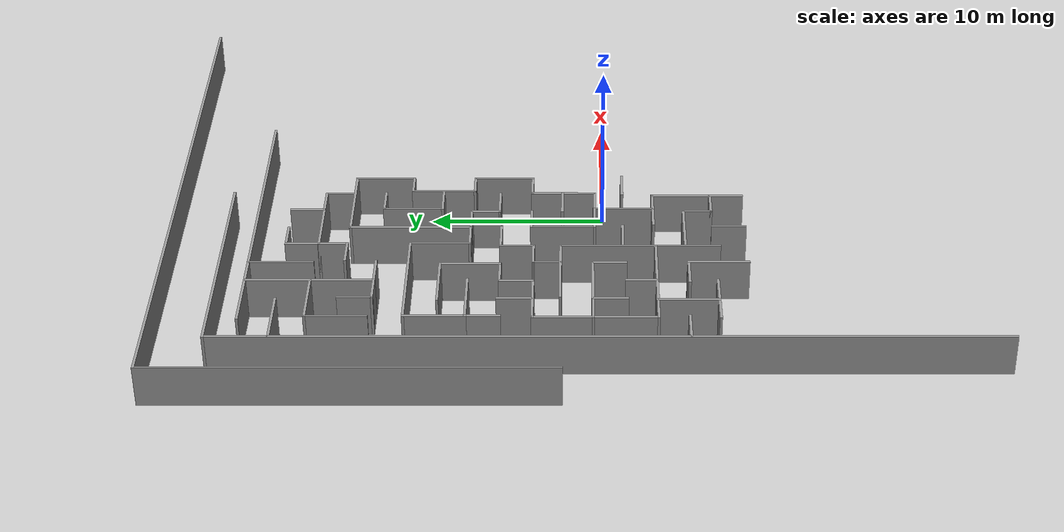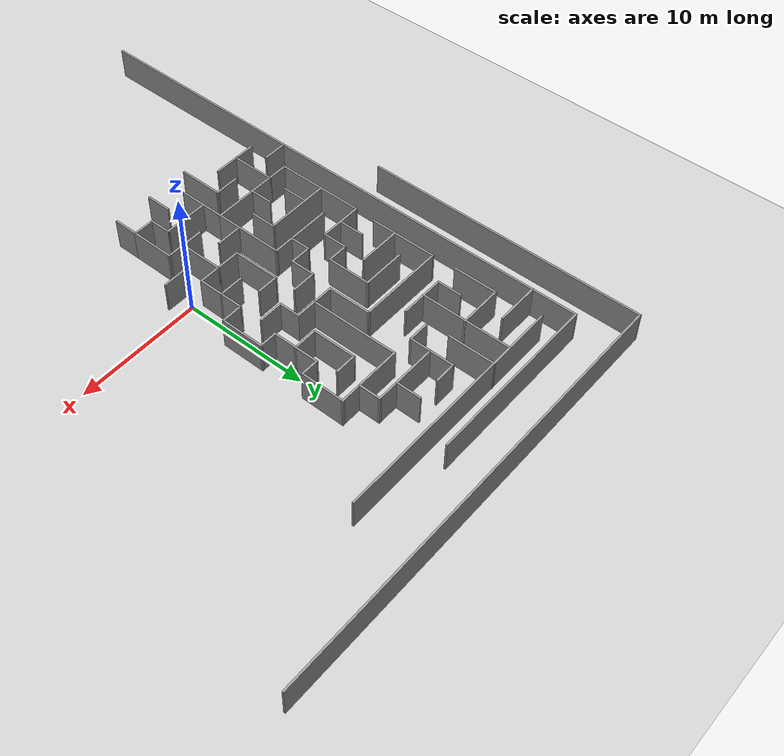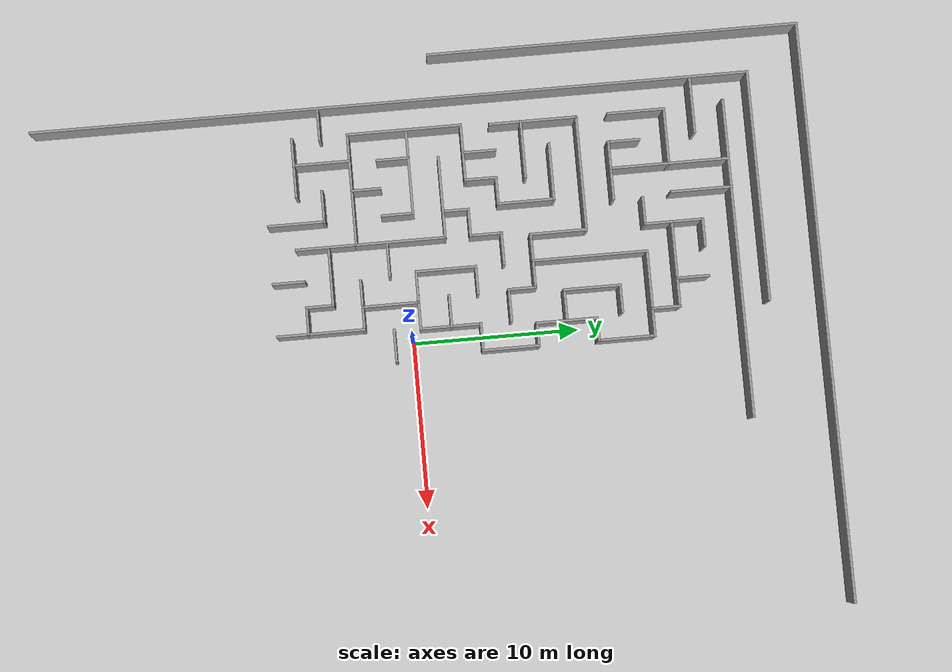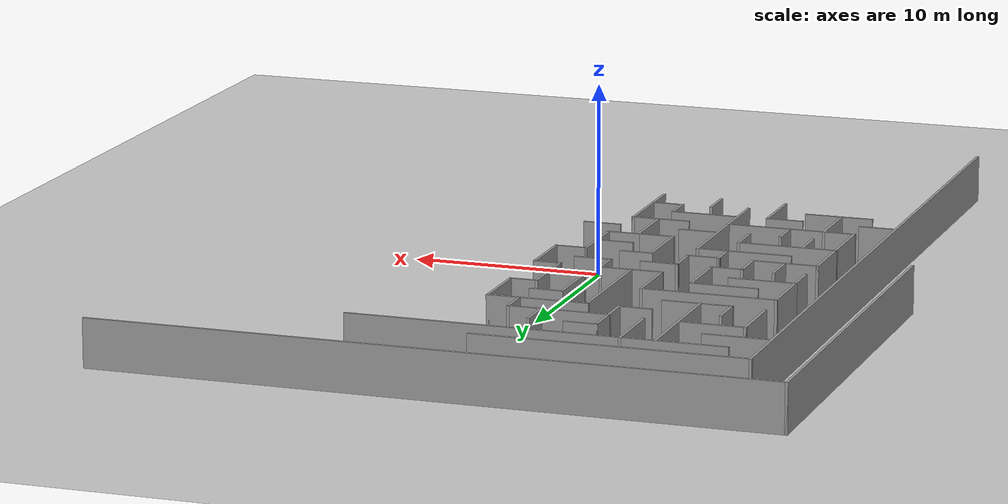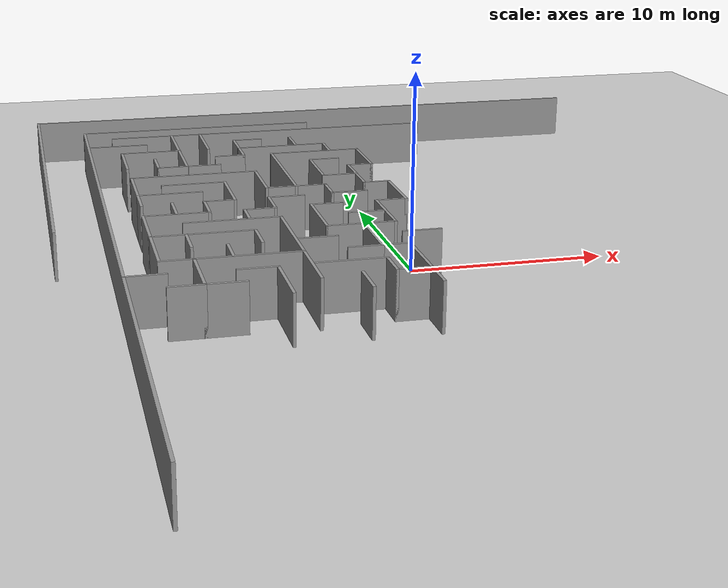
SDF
<sdf version="1.6">
 <world name="default">
  <model name="ground_plane">
   <static>1</static>
   <link name="link">
    <collision name="collision">
     <geometry><plane><normal>0 0 1</normal><size>100 100</size></plane></geometry>
     <surface><friction><ode><mu>100</mu><mu2>50</mu2></ode></friction></surface>
    </collision>
    <visual name="visual">
     <cast_shadows>0</cast_shadows>
     <geometry><plane><normal>0 0 1</normal><size>100 100</size></plane></geometry>
     <material>
      <script><uri>file://media/materials/scripts/gazebo.material</uri><name>Gazebo/Grey</name></script>
     </material>
    </visual>
   </link>
  </model>
  <model name="navigation-maze">
   <pose>0.2351 -0.2528 0 0 -0 0</pose>
   <link name="Wall_103">
    <collision name="Wall_103_Collision">
     <geometry><box><size>2 0.15 2.5</size></box></geometry>
     <pose>0 0 1.25 0 -0 0</pose>
    </collision>
    <visual name="Wall_103_Visual">
     <pose>0 0 1.25 0 -0 0</pose>
     <geometry><box><size>2 0.15 2.5</size></box></geometry>
     <material>
      <script><uri>file://media/materials/scripts/gazebo.material</uri><name>Gazebo/Grey</name></script>
      <ambient>1 1 1 1</ambient>
     </material>
    </visual>
    <pose>-10.462 -6.02334 0 0 -0 0</pose>
   </link>
   <link name="Wall_105">
    <collision name="Wall_105_Collision">
     <geometry><box><size>5.25 0.15 2.5</size></box></geometry>
     <pose>0 0 1.25 0 -0 0</pose>
    </collision>
    <visual name="Wall_105_Visual">
     <pose>0 0 1.25 0 -0 0</pose>
     <geometry><box><size>5.25 0.15 2.5</size></box></geometry>
     <material>
      <script><uri>file://media/materials/scripts/gazebo.material</uri><name>Gazebo/Grey</name></script>
      <ambient>1 1 1 1</ambient>
     </material>
    </visual>
    <pose>-8.83704 -2.67334 0 0 -0 0</pose>
   </link>
   <link name="Wall_106">
    <collision name="Wall_106_Collision">
     <geometry><box><size>5.5 0.15 2.5</size></box></geometry>
     <pose>0 0 1.25 0 -0 0</pose>
    </collision>
    <visual name="Wall_106_Visual">
     <pose>0 0 1.25 0 -0 0</pose>
     <geometry><box><size>5.5 0.15 2.5</size></box></geometry>
     <material>
      <script><uri>file://media/materials/scripts/gazebo.material</uri><name>Gazebo/Grey</name></script>
      <ambient>1 1 1 1</ambient>
     </material>
    </visual>
    <pose>-6.28704 0.001663 0 0 -0 1.5708</pose>
   </link>
   <link name="Wall_107">
    <collision name="Wall_107_Collision">
     <geometry><box><size>5 0.15 2.5</size></box></geometry>
     <pose>0 0 1.25 0 -0 0</pose>
    </collision>
    <visual name="Wall_107_Visual">
     <pose>0 0 1.25 0 -0 0</pose>
     <geometry><box><size>5 0.15 2.5</size></box></geometry>
     <material>
      <script><uri>file://media/materials/scripts/gazebo.material</uri><name>Gazebo/Grey</name></script>
      <ambient>1 1 1 1</ambient>
     </material>
    </visual>
    <pose>-8.71204 2.67666 0 0 -0 3.14159</pose>
   </link>
   <link name="Wall_109">
    <collision name="Wall_109_Collision">
     <geometry><box><size>2 0.15 2.5</size></box></geometry>
     <pose>0 0 1.25 0 -0 0</pose>
    </collision>
    <visual name="Wall_109_Visual">
     <pose>0 0 1.25 0 -0 0</pose>
     <geometry><box><size>2 0.15 2.5</size></box></geometry>
     <material>
      <script><uri>file://media/materials/scripts/gazebo.material</uri><name>Gazebo/Grey</name></script>
      <ambient>1 1 1 1</ambient>
     </material>
    </visual>
    <pose>-5.2054 -0.836643 0 0 -0 0</pose>
   </link>
   <link name="Wall_111">
    <collision name="Wall_111_Collision">
     <geometry><box><size>1.67297 0.15 2.5</size></box></geometry>
     <pose>0 0 1.25 0 -0 0</pose>
    </collision>
    <visual name="Wall_111_Visual">
     <pose>0 0 1.25 0 -0 0</pose>
     <geometry><box><size>1.67297 0.15 2.5</size></box></geometry>
     <material>
      <script><uri>file://media/materials/scripts/gazebo.material</uri><name>Gazebo/Grey</name></script>
      <ambient>1 1 1 1</ambient>
     </material>
    </visual>
    <pose>-7.86144 3.43937 0 0 -0 1.57161</pose>
   </link>
   <link name="Wall_112">
    <collision name="Wall_112_Collision">
     <geometry><box><size>1.75 0.15 2.5</size></box></geometry>
     <pose>0 0 1.25 0 -0 0</pose>
    </collision>
    <visual name="Wall_112_Visual">
     <pose>0 0 1.25 0 -0 0</pose>
     <geometry><box><size>1.75 0.15 2.5</size></box></geometry>
     <material>
      <script><uri>file://media/materials/scripts/gazebo.material</uri><name>Gazebo/Grey</name></script>
      <ambient>1 1 1 1</ambient>
     </material>
    </visual>
    <pose>-7.06206 4.20085 0 0 -0 0</pose>
   </link>
   <link name="Wall_113">
    <collision name="Wall_113_Collision">
     <geometry><box><size>2 0.15 2.5</size></box></geometry>
     <pose>0 0 1.25 0 -0 0</pose>
    </collision>
    <visual name="Wall_113_Visual">
     <pose>0 0 1.25 0 -0 0</pose>
     <geometry><box><size>2 0.15 2.5</size></box></geometry>
     <material>
      <script><uri>file://media/materials/scripts/gazebo.material</uri><name>Gazebo/Grey</name></script>
      <ambient>1 1 1 1</ambient>
     </material>
    </visual>
    <pose>-6.26206 5.12584 0 0 -0 1.5708</pose>
   </link>
   <link name="Wall_114">
    <collision name="Wall_114_Collision">
     <geometry><box><size>2 0.15 2.5</size></box></geometry>
     <pose>0 0 1.25 0 -0 0</pose>
    </collision>
    <visual name="Wall_114_Visual">
     <pose>0 0 1.25 0 -0 0</pose>
     <geometry><box><size>2 0.15 2.5</size></box></geometry>
     <material>
      <script><uri>file://media/materials/scripts/gazebo.material</uri><name>Gazebo/Grey</name></script>
      <ambient>1 1 1 1</ambient>
     </material>
    </visual>
    <pose>-5.33706 6.05084 0 0 -0 0</pose>
   </link>
   <link name="Wall_116">
    <collision name="Wall_116_Collision">
     <geometry><box><size>5.25 0.15 2.5</size></box></geometry>
     <pose>0 0 1.25 0 -0 0</pose>
    </collision>
    <visual name="Wall_116_Visual">
     <pose>0 0 1.25 0 -0 0</pose>
     <geometry><box><size>5.25 0.15 2.5</size></box></geometry>
     <material>
      <script><uri>file://media/materials/scripts/gazebo.material</uri><name>Gazebo/Grey</name></script>
      <ambient>1 1 1 1</ambient>
     </material>
    </visual>
    <pose>-10.4554 0.869178 0 0 -0 0</pose>
   </link>
   <link name="Wall_117">
    <collision name="Wall_117_Collision">
     <geometry><box><size>2 0.15 2.5</size></box></geometry>
     <pose>0 0 1.25 0 -0 0</pose>
    </collision>
    <visual name="Wall_117_Visual">
     <pose>0 0 1.25 0 -0 0</pose>
     <geometry><box><size>2 0.15 2.5</size></box></geometry>
     <material>
      <script><uri>file://media/materials/scripts/gazebo.material</uri><name>Gazebo/Grey</name></script>
      <ambient>1 1 1 1</ambient>
     </material>
    </visual>
    <pose>-7.90537 -0.055822 0 0 0 -1.5708</pose>
   </link>
   <link name="Wall_119">
    <collision name="Wall_119_Collision">
     <geometry><box><size>2 0.15 2.5</size></box></geometry>
     <pose>0 0 1.25 0 -0 0</pose>
    </collision>
    <visual name="Wall_119_Visual">
     <pose>0 0 1.25 0 -0 0</pose>
     <geometry><box><size>2 0.15 2.5</size></box></geometry>
     <material>
      <script><uri>file://media/materials/scripts/gazebo.material</uri><name>Gazebo/Grey</name></script>
      <ambient>1 1 1 1</ambient>
     </material>
    </visual>
    <pose>-11.2737 -0.081668 0 0 0 -1.5708</pose>
   </link>
   <link name="Wall_121">
    <collision name="Wall_121_Collision">
     <geometry><box><size>1.75 0.15 2.5</size></box></geometry>
     <pose>0 0 1.25 0 -0 0</pose>
    </collision>
    <visual name="Wall_121_Visual">
     <pose>0 0 1.25 0 -0 0</pose>
     <geometry><box><size>1.75 0.15 2.5</size></box></geometry>
     <material>
      <script><uri>file://media/materials/scripts/gazebo.material</uri><name>Gazebo/Grey</name></script>
      <ambient>1 1 1 1</ambient>
     </material>
    </visual>
    <pose>-9.56789 -1.79172 0 0 0 -1.5708</pose>
   </link>
   <link name="Wall_123">
    <collision name="Wall_123_Collision">
     <geometry><box><size>2 0.15 2.5</size></box></geometry>
     <pose>0 0 1.25 0 -0 0</pose>
    </collision>
    <visual name="Wall_123_Visual">
     <pose>0 0 1.25 0 -0 0</pose>
     <geometry><box><size>2 0.15 2.5</size></box></geometry>
     <material>
      <script><uri>file://media/materials/scripts/gazebo.material</uri><name>Gazebo/Grey</name></script>
      <ambient>1 1 1 1</ambient>
     </material>
    </visual>
    <pose>-13.7862 -4.35167 0 0 -0 0</pose>
   </link>
   <link name="Wall_125">
    <collision name="Wall_125_Collision">
     <geometry><box><size>3.75 0.15 2.5</size></box></geometry>
     <pose>0 0 1.25 0 -0 0</pose>
    </collision>
    <visual name="Wall_125_Visual">
     <pose>0 0 1.25 0 -0 0</pose>
     <geometry><box><size>3.75 0.15 2.5</size></box></geometry>
     <material>
      <script><uri>file://media/materials/scripts/gazebo.material</uri><name>Gazebo/Grey</name></script>
      <ambient>1 1 1 1</ambient>
     </material>
    </visual>
    <pose>-6.28704 -4.47334 0 0 0 -1.5708</pose>
   </link>
   <link name="Wall_127">
    <collision name="Wall_127_Collision">
     <geometry><box><size>3.5 0.15 2.5</size></box></geometry>
     <pose>0 0 1.25 0 -0 0</pose>
    </collision>
    <visual name="Wall_127_Visual">
     <pose>0 0 1.25 0 -0 0</pose>
     <geometry><box><size>3.5 0.15 2.5</size></box></geometry>
     <material>
      <script><uri>file://media/materials/scripts/gazebo.material</uri><name>Gazebo/Grey</name></script>
      <ambient>1 1 1 1</ambient>
     </material>
    </visual>
    <pose>-4.4554 -4.35167 0 0 -0 0</pose>
   </link>
   <link name="Wall_128">
    <collision name="Wall_128_Collision">
     <geometry><box><size>1.75 0.15 2.5</size></box></geometry>
     <pose>0 0 1.25 0 -0 0</pose>
    </collision>
    <visual name="Wall_128_Visual">
     <pose>0 0 1.25 0 -0 0</pose>
     <geometry><box><size>1.75 0.15 2.5</size></box></geometry>
     <material>
      <script><uri>file://media/materials/scripts/gazebo.material</uri><name>Gazebo/Grey</name></script>
      <ambient>1 1 1 1</ambient>
     </material>
    </visual>
    <pose>-2.7804 -5.15167 0 0 0 -1.5708</pose>
   </link>
   <link name="Wall_129">
    <collision name="Wall_129_Collision">
     <geometry><box><size>1.75 0.15 2.5</size></box></geometry>
     <pose>0 0 1.25 0 -0 0</pose>
    </collision>
    <visual name="Wall_129_Visual">
     <pose>0 0 1.25 0 -0 0</pose>
     <geometry><box><size>1.75 0.15 2.5</size></box></geometry>
     <material>
      <script><uri>file://media/materials/scripts/gazebo.material</uri><name>Gazebo/Grey</name></script>
      <ambient>1 1 1 1</ambient>
     </material>
    </visual>
    <pose>-1.9804 -5.95167 0 0 -0 0</pose>
   </link>
   <link name="Wall_130">
    <collision name="Wall_130_Collision">
     <geometry><box><size>3.5 0.15 2.5</size></box></geometry>
     <pose>0 0 1.25 0 -0 0</pose>
    </collision>
    <visual name="Wall_130_Visual">
     <pose>0 0 1.25 0 -0 0</pose>
     <geometry><box><size>3.5 0.15 2.5</size></box></geometry>
     <material>
      <script><uri>file://media/materials/scripts/gazebo.material</uri><name>Gazebo/Grey</name></script>
      <ambient>1 1 1 1</ambient>
     </material>
    </visual>
    <pose>-1.1804 -4.27667 0 0 -0 1.5708</pose>
   </link>
   <link name="Wall_131">
    <collision name="Wall_131_Collision">
     <geometry><box><size>1.5 0.15 2.5</size></box></geometry>
     <pose>0 0 1.25 0 -0 0</pose>
    </collision>
    <visual name="Wall_131_Visual">
     <pose>0 0 1.25 0 -0 0</pose>
     <geometry><box><size>1.5 0.15 2.5</size></box></geometry>
     <material>
      <script><uri>file://media/materials/scripts/gazebo.material</uri><name>Gazebo/Grey</name></script>
      <ambient>1 1 1 1</ambient>
     </material>
    </visual>
    <pose>-1.8554 -2.60167 0 0 -0 3.14159</pose>
   </link>
   <link name="Wall_132">
    <collision name="Wall_132_Collision">
     <geometry><box><size>3.5 0.15 2.5</size></box></geometry>
     <pose>0 0 1.25 0 -0 0</pose>
    </collision>
    <visual name="Wall_132_Visual">
     <pose>0 0 1.25 0 -0 0</pose>
     <geometry><box><size>3.5 0.15 2.5</size></box></geometry>
     <material>
      <script><uri>file://media/materials/scripts/gazebo.material</uri><name>Gazebo/Grey</name></script>
      <ambient>1 1 1 1</ambient>
     </material>
    </visual>
    <pose>-2.5304 -0.926668 0 0 -0 1.5708</pose>
   </link>
   <link name="Wall_133">
    <collision name="Wall_133_Collision">
     <geometry><box><size>2 0.15 2.5</size></box></geometry>
     <pose>0 0 1.25 0 -0 0</pose>
    </collision>
    <visual name="Wall_133_Visual">
     <pose>0 0 1.25 0 -0 0</pose>
     <geometry><box><size>2 0.15 2.5</size></box></geometry>
     <material>
      <script><uri>file://media/materials/scripts/gazebo.material</uri><name>Gazebo/Grey</name></script>
      <ambient>1 1 1 1</ambient>
     </material>
    </visual>
    <pose>-3.4554 0.748332 0 0 -0 3.14159</pose>
   </link>
   <link name="Wall_134">
    <collision name="Wall_134_Collision">
     <geometry><box><size>3.75 0.15 2.5</size></box></geometry>
     <pose>0 0 1.25 0 -0 0</pose>
    </collision>
    <visual name="Wall_134_Visual">
     <pose>0 0 1.25 0 -0 0</pose>
     <geometry><box><size>3.75 0.15 2.5</size></box></geometry>
     <material>
      <script><uri>file://media/materials/scripts/gazebo.material</uri><name>Gazebo/Grey</name></script>
      <ambient>1 1 1 1</ambient>
     </material>
    </visual>
    <pose>-4.3804 2.54833 0 0 -0 1.5708</pose>
   </link>
   <link name="Wall_135">
    <collision name="Wall_135_Collision">
     <geometry><box><size>1.75 0.15 2.5</size></box></geometry>
     <pose>0 0 1.25 0 -0 0</pose>
    </collision>
    <visual name="Wall_135_Visual">
     <pose>0 0 1.25 0 -0 0</pose>
     <geometry><box><size>1.75 0.15 2.5</size></box></geometry>
     <material>
      <script><uri>file://media/materials/scripts/gazebo.material</uri><name>Gazebo/Grey</name></script>
      <ambient>1 1 1 1</ambient>
     </material>
    </visual>
    <pose>-3.5804 4.34833 0 0 -0 0</pose>
   </link>
   <link name="Wall_137">
    <collision name="Wall_137_Collision">
     <geometry><box><size>2 0.15 2.5</size></box></geometry>
     <pose>0 0 1.25 0 -0 0</pose>
    </collision>
    <visual name="Wall_137_Visual">
     <pose>0 0 1.25 0 -0 0</pose>
     <geometry><box><size>2 0.15 2.5</size></box></geometry>
     <material>
      <script><uri>file://media/materials/scripts/gazebo.material</uri><name>Gazebo/Grey</name></script>
      <ambient>1 1 1 1</ambient>
     </material>
    </visual>
    <pose>-1.1804 -6.87667 0 0 0 -1.5708</pose>
   </link>
   <link name="Wall_139">
    <collision name="Wall_139_Collision">
     <geometry><box><size>1.75 0.15 2.5</size></box></geometry>
     <pose>0 0 1.25 0 -0 0</pose>
    </collision>
    <visual name="Wall_139_Visual">
     <pose>0 0 1.25 0 -0 0</pose>
     <geometry><box><size>1.75 0.15 2.5</size></box></geometry>
     <material>
      <script><uri>file://media/materials/scripts/gazebo.material</uri><name>Gazebo/Grey</name></script>
      <ambient>1 1 1 1</ambient>
     </material>
    </visual>
    <pose>-1.7304 0.748332 0 0 -0 0</pose>
   </link>
   <link name="Wall_140">
    <collision name="Wall_140_Collision">
     <geometry><box><size>3.75 0.15 2.5</size></box></geometry>
     <pose>0 0 1.25 0 -0 0</pose>
    </collision>
    <visual name="Wall_140_Visual">
     <pose>0 0 1.25 0 -0 0</pose>
     <geometry><box><size>3.75 0.15 2.5</size></box></geometry>
     <material>
      <script><uri>file://media/materials/scripts/gazebo.material</uri><name>Gazebo/Grey</name></script>
      <ambient>1 1 1 1</ambient>
     </material>
    </visual>
    <pose>-0.930398 2.54833 0 0 -0 1.5708</pose>
   </link>
   <link name="Wall_141">
    <collision name="Wall_141_Collision">
     <geometry><box><size>1.75 0.15 2.5</size></box></geometry>
     <pose>0 0 1.25 0 -0 0</pose>
    </collision>
    <visual name="Wall_141_Visual">
     <pose>0 0 1.25 0 -0 0</pose>
     <geometry><box><size>1.75 0.15 2.5</size></box></geometry>
     <material>
      <script><uri>file://media/materials/scripts/gazebo.material</uri><name>Gazebo/Grey</name></script>
      <ambient>1 1 1 1</ambient>
     </material>
    </visual>
    <pose>-0.130398 4.34833 0 0 -0 0</pose>
   </link>
   <link name="Wall_142">
    <collision name="Wall_142_Collision">
     <geometry><box><size>3.5 0.15 2.5</size></box></geometry>
     <pose>0 0 1.25 0 -0 0</pose>
    </collision>
    <visual name="Wall_142_Visual">
     <pose>0 0 1.25 0 -0 0</pose>
     <geometry><box><size>3.5 0.15 2.5</size></box></geometry>
     <material>
      <script><uri>file://media/materials/scripts/gazebo.material</uri><name>Gazebo/Grey</name></script>
      <ambient>1 1 1 1</ambient>
     </material>
    </visual>
    <pose>0.669602 6.02333 0 0 -0 1.5708</pose>
   </link>
   <link name="Wall_143">
    <collision name="Wall_143_Collision">
     <geometry><box><size>1.5 0.15 2.5</size></box></geometry>
     <pose>0 0 1.25 0 -0 0</pose>
    </collision>
    <visual name="Wall_143_Visual">
     <pose>0 0 1.25 0 -0 0</pose>
     <geometry><box><size>1.5 0.15 2.5</size></box></geometry>
     <material>
      <script><uri>file://media/materials/scripts/gazebo.material</uri><name>Gazebo/Grey</name></script>
      <ambient>1 1 1 1</ambient>
     </material>
    </visual>
    <pose>-0.005398 7.69833 0 0 -0 3.14159</pose>
   </link>
   <link name="Wall_144">
    <collision name="Wall_144_Collision">
     <geometry><box><size>3.75 0.15 2.5</size></box></geometry>
     <pose>0 0 1.25 0 -0 0</pose>
    </collision>
    <visual name="Wall_144_Visual">
     <pose>0 0 1.25 0 -0 0</pose>
     <geometry><box><size>3.75 0.15 2.5</size></box></geometry>
     <material>
      <script><uri>file://media/materials/scripts/gazebo.material</uri><name>Gazebo/Grey</name></script>
      <ambient>1 1 1 1</ambient>
     </material>
    </visual>
    <pose>-0.680398 9.49833 0 0 -0 1.5708</pose>
   </link>
   <link name="Wall_145">
    <collision name="Wall_145_Collision">
     <geometry><box><size>1.5 0.15 2.5</size></box></geometry>
     <pose>0 0 1.25 0 -0 0</pose>
    </collision>
    <visual name="Wall_145_Visual">
     <pose>0 0 1.25 0 -0 0</pose>
     <geometry><box><size>1.5 0.15 2.5</size></box></geometry>
     <material>
      <script><uri>file://media/materials/scripts/gazebo.material</uri><name>Gazebo/Grey</name></script>
      <ambient>1 1 1 1</ambient>
     </material>
    </visual>
    <pose>-0.005398 11.2983 0 0 -0 0</pose>
   </link>
   <link name="Wall_146">
    <collision name="Wall_146_Collision">
     <geometry><box><size>3.5 0.15 2.5</size></box></geometry>
     <pose>0 0 1.25 0 -0 0</pose>
    </collision>
    <visual name="Wall_146_Visual">
     <pose>0 0 1.25 0 -0 0</pose>
     <geometry><box><size>3.5 0.15 2.5</size></box></geometry>
     <material>
      <script><uri>file://media/materials/scripts/gazebo.material</uri><name>Gazebo/Grey</name></script>
      <ambient>1 1 1 1</ambient>
     </material>
    </visual>
    <pose>0.669602 12.9733 0 0 -0 1.5708</pose>
   </link>
   <link name="Wall_147">
    <collision name="Wall_147_Collision">
     <geometry><box><size>5.25 0.15 2.5</size></box></geometry>
     <pose>0 0 1.25 0 -0 0</pose>
    </collision>
    <visual name="Wall_147_Visual">
     <pose>0 0 1.25 0 -0 0</pose>
     <geometry><box><size>5.25 0.15 2.5</size></box></geometry>
     <material>
      <script><uri>file://media/materials/scripts/gazebo.material</uri><name>Gazebo/Grey</name></script>
      <ambient>1 1 1 1</ambient>
     </material>
    </visual>
    <pose>-1.8804 14.6483 0 0 -0 3.14159</pose>
   </link>
   <link name="Wall_148">
    <collision name="Wall_148_Collision">
     <geometry><box><size>7 0.15 2.5</size></box></geometry>
     <pose>0 0 1.25 0 -0 0</pose>
    </collision>
    <visual name="Wall_148_Visual">
     <pose>0 0 1.25 0 -0 0</pose>
     <geometry><box><size>7 0.15 2.5</size></box></geometry>
     <material>
      <script><uri>file://media/materials/scripts/gazebo.material</uri><name>Gazebo/Grey</name></script>
      <ambient>1 1 1 1</ambient>
     </material>
    </visual>
    <pose>-4.4304 11.2233 0 0 0 -1.5708</pose>
   </link>
   <link name="Wall_149">
    <collision name="Wall_149_Collision">
     <geometry><box><size>1.75 0.15 2.5</size></box></geometry>
     <pose>0 0 1.25 0 -0 0</pose>
    </collision>
    <visual name="Wall_149_Visual">
     <pose>0 0 1.25 0 -0 0</pose>
     <geometry><box><size>1.75 0.15 2.5</size></box></geometry>
     <material>
      <script><uri>file://media/materials/scripts/gazebo.material</uri><name>Gazebo/Grey</name></script>
      <ambient>1 1 1 1</ambient>
     </material>
    </visual>
    <pose>-5.2304 7.79833 0 0 -0 3.14159</pose>
   </link>
   <link name="Wall_150">
    <collision name="Wall_150_Collision">
     <geometry><box><size>3.5 0.15 2.5</size></box></geometry>
     <pose>0 0 1.25 0 -0 0</pose>
    </collision>
    <visual name="Wall_150_Visual">
     <pose>0 0 1.25 0 -0 0</pose>
     <geometry><box><size>3.5 0.15 2.5</size></box></geometry>
     <material>
      <script><uri>file://media/materials/scripts/gazebo.material</uri><name>Gazebo/Grey</name></script>
      <ambient>1 1 1 1</ambient>
     </material>
    </visual>
    <pose>-6.0304 9.47333 0 0 -0 1.5708</pose>
   </link>
   <link name="Wall_151">
    <collision name="Wall_151_Collision">
     <geometry><box><size>7 0.15 2.5</size></box></geometry>
     <pose>0 0 1.25 0 -0 0</pose>
    </collision>
    <visual name="Wall_151_Visual">
     <pose>0 0 1.25 0 -0 0</pose>
     <geometry><box><size>7 0.15 2.5</size></box></geometry>
     <material>
      <script><uri>file://media/materials/scripts/gazebo.material</uri><name>Gazebo/Grey</name></script>
      <ambient>1 1 1 1</ambient>
     </material>
    </visual>
    <pose>-9.4554 11.1483 0 0 -0 3.14159</pose>
   </link>
   <link name="Wall_152">
    <collision name="Wall_152_Collision">
     <geometry><box><size>3.5 0.15 2.5</size></box></geometry>
     <pose>0 0 1.25 0 -0 0</pose>
    </collision>
    <visual name="Wall_152_Visual">
     <pose>0 0 1.25 0 -0 0</pose>
     <geometry><box><size>3.5 0.15 2.5</size></box></geometry>
     <material>
      <script><uri>file://media/materials/scripts/gazebo.material</uri><name>Gazebo/Grey</name></script>
      <ambient>1 1 1 1</ambient>
     </material>
    </visual>
    <pose>-12.8804 9.47333 0 0 0 -1.5708</pose>
   </link>
   <link name="Wall_153">
    <collision name="Wall_153_Collision">
     <geometry><box><size>3.5 0.15 2.5</size></box></geometry>
     <pose>0 0 1.25 0 -0 0</pose>
    </collision>
    <visual name="Wall_153_Visual">
     <pose>0 0 1.25 0 -0 0</pose>
     <geometry><box><size>3.5 0.15 2.5</size></box></geometry>
     <material>
      <script><uri>file://media/materials/scripts/gazebo.material</uri><name>Gazebo/Grey</name></script>
      <ambient>1 1 1 1</ambient>
     </material>
    </visual>
    <pose>-11.2054 7.79833 0 0 -0 0</pose>
   </link>
   <link name="Wall_155">
    <collision name="Wall_155_Collision">
     <geometry><box><size>2 0.15 2.5</size></box></geometry>
     <pose>0 0 1.25 0 -0 0</pose>
    </collision>
    <visual name="Wall_155_Visual">
     <pose>0 0 1.25 0 -0 0</pose>
     <geometry><box><size>2 0.15 2.5</size></box></geometry>
     <material>
      <script><uri>file://media/materials/scripts/gazebo.material</uri><name>Gazebo/Grey</name></script>
      <ambient>1 1 1 1</ambient>
     </material>
    </visual>
    <pose>-1.60194 9.50167 0 0 -0 3.14159</pose>
   </link>
   <link name="Wall_156">
    <collision name="Wall_156_Collision">
     <geometry><box><size>3.5 0.15 2.5</size></box></geometry>
     <pose>0 0 1.25 0 -0 0</pose>
    </collision>
    <visual name="Wall_156_Visual">
     <pose>0 0 1.25 0 -0 0</pose>
     <geometry><box><size>3.5 0.15 2.5</size></box></geometry>
     <material>
      <script><uri>file://media/materials/scripts/gazebo.material</uri><name>Gazebo/Grey</name></script>
      <ambient>1 1 1 1</ambient>
     </material>
    </visual>
    <pose>-2.52694 11.1767 0 0 -0 1.5708</pose>
   </link>
   <link name="Wall_157">
    <collision name="Wall_157_Collision">
     <geometry><box><size>1.75 0.15 2.5</size></box></geometry>
     <pose>0 0 1.25 0 -0 0</pose>
    </collision>
    <visual name="Wall_157_Visual">
     <pose>0 0 1.25 0 -0 0</pose>
     <geometry><box><size>1.75 0.15 2.5</size></box></geometry>
     <material>
      <script><uri>file://media/materials/scripts/gazebo.material</uri><name>Gazebo/Grey</name></script>
      <ambient>1 1 1 1</ambient>
     </material>
    </visual>
    <pose>-1.72694 12.8517 0 0 -0 0</pose>
   </link>
   <link name="Wall_159">
    <collision name="Wall_159_Collision">
     <geometry><box><size>1.75 0.15 2.5</size></box></geometry>
     <pose>0 0 1.25 0 -0 0</pose>
    </collision>
    <visual name="Wall_159_Visual">
     <pose>0 0 1.25 0 -0 0</pose>
     <geometry><box><size>1.75 0.15 2.5</size></box></geometry>
     <material>
      <script><uri>file://media/materials/scripts/gazebo.material</uri><name>Gazebo/Grey</name></script>
      <ambient>1 1 1 1</ambient>
     </material>
    </visual>
    <pose>-3.6304 7.79833 0 0 -0 0</pose>
   </link>
   <link name="Wall_160">
    <collision name="Wall_160_Collision">
     <geometry><box><size>1.75 0.15 2.5</size></box></geometry>
     <pose>0 0 1.25 0 -0 0</pose>
    </collision>
    <visual name="Wall_160_Visual">
     <pose>0 0 1.25 0 -0 0</pose>
     <geometry><box><size>1.75 0.15 2.5</size></box></geometry>
     <material>
      <script><uri>file://media/materials/scripts/gazebo.material</uri><name>Gazebo/Grey</name></script>
      <ambient>1 1 1 1</ambient>
     </material>
    </visual>
    <pose>-2.8304 6.99833 0 0 0 -1.5708</pose>
   </link>
   <link name="Wall_161">
    <collision name="Wall_161_Collision">
     <geometry><box><size>2 0.15 2.5</size></box></geometry>
     <pose>0 0 1.25 0 -0 0</pose>
    </collision>
    <visual name="Wall_161_Visual">
     <pose>0 0 1.25 0 -0 0</pose>
     <geometry><box><size>2 0.15 2.5</size></box></geometry>
     <material>
      <script><uri>file://media/materials/scripts/gazebo.material</uri><name>Gazebo/Grey</name></script>
      <ambient>1 1 1 1</ambient>
     </material>
    </visual>
    <pose>-1.9054 6.19833 0 0 -0 0</pose>
   </link>
   <link name="Wall_163">
    <collision name="Wall_163_Collision">
     <geometry><box><size>2 0.15 2.5</size></box></geometry>
     <pose>0 0 1.25 0 -0 0</pose>
    </collision>
    <visual name="Wall_163_Visual">
     <pose>0 0 1.25 0 -0 0</pose>
     <geometry><box><size>2 0.15 2.5</size></box></geometry>
     <material>
      <script><uri>file://media/materials/scripts/gazebo.material</uri><name>Gazebo/Grey</name></script>
      <ambient>1 1 1 1</ambient>
     </material>
    </visual>
    <pose>-11.2996 5.17997 0 0 -0 1.5708</pose>
   </link>
   <link name="Wall_165">
    <collision name="Wall_165_Collision">
     <geometry><box><size>2 0.15 2.5</size></box></geometry>
     <pose>0 0 1.25 0 -0 0</pose>
    </collision>
    <visual name="Wall_165_Visual">
     <pose>0 0 1.25 0 -0 0</pose>
     <geometry><box><size>2 0.15 2.5</size></box></geometry>
     <material>
      <script><uri>file://media/materials/scripts/gazebo.material</uri><name>Gazebo/Grey</name></script>
      <ambient>1 1 1 1</ambient>
     </material>
    </visual>
    <pose>-12.8804 6.87333 0 0 0 -1.5708</pose>
   </link>
   <link name="Wall_170">
    <collision name="Wall_170_Collision">
     <geometry><box><size>1.75 0.15 2.5</size></box></geometry>
     <pose>0 0 1.25 0 -0 0</pose>
    </collision>
    <visual name="Wall_170_Visual">
     <pose>0 0 1.25 0 -0 0</pose>
     <geometry><box><size>1.75 0.15 2.5</size></box></geometry>
     <material>
      <script><uri>file://media/materials/scripts/gazebo.material</uri><name>Gazebo/Grey</name></script>
      <ambient>1 1 1 1</ambient>
     </material>
    </visual>
    <pose>-0.961243 15.4967 0 0 -0 1.5708</pose>
   </link>
   <link name="Wall_171">
    <collision name="Wall_171_Collision">
     <geometry><box><size>5.25 0.15 2.5</size></box></geometry>
     <pose>0 0 1.25 0 -0 0</pose>
    </collision>
    <visual name="Wall_171_Visual">
     <pose>0 0 1.25 0 -0 0</pose>
     <geometry><box><size>5.25 0.15 2.5</size></box></geometry>
     <material>
      <script><uri>file://media/materials/scripts/gazebo.material</uri><name>Gazebo/Grey</name></script>
      <ambient>1 1 1 1</ambient>
     </material>
    </visual>
    <pose>-3.51124 16.2967 0 0 -0 3.14159</pose>
   </link>
   <link name="Wall_172">
    <collision name="Wall_172_Collision">
     <geometry><box><size>1.75 0.15 2.5</size></box></geometry>
     <pose>0 0 1.25 0 -0 0</pose>
    </collision>
    <visual name="Wall_172_Visual">
     <pose>0 0 1.25 0 -0 0</pose>
     <geometry><box><size>1.75 0.15 2.5</size></box></geometry>
     <material>
      <script><uri>file://media/materials/scripts/gazebo.material</uri><name>Gazebo/Grey</name></script>
      <ambient>1 1 1 1</ambient>
     </material>
    </visual>
    <pose>-6.06124 15.4967 0 0 0 -1.5708</pose>
   </link>
   <link name="Wall_173">
    <collision name="Wall_173_Collision">
     <geometry><box><size>1.75 0.15 2.5</size></box></geometry>
     <pose>0 0 1.25 0 -0 0</pose>
    </collision>
    <visual name="Wall_173_Visual">
     <pose>0 0 1.25 0 -0 0</pose>
     <geometry><box><size>1.75 0.15 2.5</size></box></geometry>
     <material>
      <script><uri>file://media/materials/scripts/gazebo.material</uri><name>Gazebo/Grey</name></script>
      <ambient>1 1 1 1</ambient>
     </material>
    </visual>
    <pose>-6.86124 14.6967 0 0 -0 3.14159</pose>
   </link>
   <link name="Wall_175">
    <collision name="Wall_175_Collision">
     <geometry><box><size>2 0.15 2.5</size></box></geometry>
     <pose>0 0 1.25 0 -0 0</pose>
    </collision>
    <visual name="Wall_175_Visual">
     <pose>0 0 1.25 0 -0 0</pose>
     <geometry><box><size>2 0.15 2.5</size></box></geometry>
     <material>
      <script><uri>file://media/materials/scripts/gazebo.material</uri><name>Gazebo/Grey</name></script>
      <ambient>1 1 1 1</ambient>
     </material>
    </visual>
    <pose>-6.06124 17.2217 0 0 -0 1.5708</pose>
   </link>
   <link name="Wall_176">
    <collision name="Wall_176_Collision">
     <geometry><box><size>1.75 0.15 2.5</size></box></geometry>
     <pose>0 0 1.25 0 -0 0</pose>
    </collision>
    <visual name="Wall_176_Visual">
     <pose>0 0 1.25 0 -0 0</pose>
     <geometry><box><size>1.75 0.15 2.5</size></box></geometry>
     <material>
      <script><uri>file://media/materials/scripts/gazebo.material</uri><name>Gazebo/Grey</name></script>
      <ambient>1 1 1 1</ambient>
     </material>
    </visual>
    <pose>-5.26124 18.1467 0 0 -0 0</pose>
   </link>
   <link name="Wall_178">
    <collision name="Wall_178_Collision">
     <geometry><box><size>2 0.15 2.5</size></box></geometry>
     <pose>0 0 1.25 0 -0 0</pose>
    </collision>
    <visual name="Wall_178_Visual">
     <pose>0 0 1.25 0 -0 0</pose>
     <geometry><box><size>2 0.15 2.5</size></box></geometry>
     <material>
      <script><uri>file://media/materials/scripts/gazebo.material</uri><name>Gazebo/Grey</name></script>
      <ambient>1 1 1 1</ambient>
     </material>
    </visual>
    <pose>-2.64122 17.25 0 0 -0 1.5708</pose>
   </link>
   <link name="Wall_180">
    <collision name="Wall_180_Collision">
     <geometry><box><size>2 0.15 2.5</size></box></geometry>
     <pose>0 0 1.25 0 -0 0</pose>
    </collision>
    <visual name="Wall_180_Visual">
     <pose>0 0 1.25 0 -0 0</pose>
     <geometry><box><size>2 0.15 2.5</size></box></geometry>
     <material>
      <script><uri>file://media/materials/scripts/gazebo.material</uri><name>Gazebo/Grey</name></script>
      <ambient>1 1 1 1</ambient>
     </material>
    </visual>
    <pose>-1.85517 2.60161 0 0 -0 3.14159</pose>
   </link>
   <link name="Wall_182">
    <collision name="Wall_182_Collision">
     <geometry><box><size>1.75 0.15 2.5</size></box></geometry>
     <pose>0 0 1.25 0 -0 0</pose>
    </collision>
    <visual name="Wall_182_Visual">
     <pose>0 0 1.25 0 -0 0</pose>
     <geometry><box><size>1.75 0.15 2.5</size></box></geometry>
     <material>
      <script><uri>file://media/materials/scripts/gazebo.material</uri><name>Gazebo/Grey</name></script>
      <ambient>1 1 1 1</ambient>
     </material>
    </visual>
    <pose>-3.3304 -2.60167 0 0 -0 3.14159</pose>
   </link>
   <link name="Wall_192">
    <collision name="Wall_192_Collision">
     <geometry><box><size>2 0.15 2.5</size></box></geometry>
     <pose>0 0 1.25 0 -0 0</pose>
    </collision>
    <visual name="Wall_192_Visual">
     <pose>0 0 1.25 0 -0 0</pose>
     <geometry><box><size>2 0.15 2.5</size></box></geometry>
     <material>
      <script><uri>file://media/materials/scripts/gazebo.material</uri><name>Gazebo/Grey</name></script>
      <ambient>1 1 1 1</ambient>
     </material>
    </visual>
    <pose>-0.055398 -0.851668 0 0 -0 3.14159</pose>
   </link>
   <link name="Wall_256">
    <collision name="Wall_256_Collision">
     <geometry><box><size>3.5 0.15 2.5</size></box></geometry>
     <pose>0 0 1.25 0 -0 0</pose>
    </collision>
    <visual name="Wall_256_Visual">
     <pose>0 0 1.25 0 -0 0</pose>
     <geometry><box><size>3.5 0.15 2.5</size></box></geometry>
     <material>
      <script><uri>file://media/materials/scripts/gazebo.material</uri><name>Gazebo/Grey</name></script>
      <ambient>1 1 1 1</ambient>
     </material>
    </visual>
    <pose>-13.0362 18.1858 0 0 -0 0</pose>
   </link>
   <link name="Wall_281">
    <collision name="Wall_281_Collision">
     <geometry><box><size>19.25 0.15 2.5</size></box></geometry>
     <pose>0 0 1.25 0 -0 0</pose>
    </collision>
    <visual name="Wall_281_Visual">
     <pose>0 0 1.25 0 -0 0</pose>
     <geometry><box><size>19.25 0.15 2.5</size></box></geometry>
     <material>
      <script><uri>file://media/materials/scripts/gazebo.material</uri><name>Gazebo/Grey</name></script>
      <ambient>1 1 1 1</ambient>
     </material>
    </visual>
    <pose>-3.58458 20.0492 0 0 -0 3.14159</pose>
   </link>
   <link name="Wall_283">
    <collision name="Wall_283_Collision">
     <geometry><box><size>3.75 0.15 2.5</size></box></geometry>
     <pose>0 0 1.25 0 -0 0</pose>
    </collision>
    <visual name="Wall_283_Visual">
     <pose>0 0 1.25 0 -0 0</pose>
     <geometry><box><size>3.75 0.15 2.5</size></box></geometry>
     <material>
      <script><uri>file://media/materials/scripts/gazebo.material</uri><name>Gazebo/Grey</name></script>
      <ambient>1 1 1 1</ambient>
     </material>
    </visual>
    <pose>-7.86206 18.2726 0 0 0 -1.5708</pose>
   </link>
   <link name="Wall_285">
    <collision name="Wall_285_Collision">
     <geometry><box><size>7.25 0.15 2.5</size></box></geometry>
     <pose>0 0 1.25 0 -0 0</pose>
    </collision>
    <visual name="Wall_285_Visual">
     <pose>0 0 1.25 0 -0 0</pose>
     <geometry><box><size>7.25 0.15 2.5</size></box></geometry>
     <material>
      <script><uri>file://media/materials/scripts/gazebo.material</uri><name>Gazebo/Grey</name></script>
      <ambient>1 1 1 1</ambient>
     </material>
    </visual>
    <pose>-9.59373 16.4967 0 0 0 -1.5708</pose>
   </link>
   <link name="Wall_286">
    <collision name="Wall_286_Collision">
     <geometry><box><size>1.75 0.15 2.5</size></box></geometry>
     <pose>0 0 1.25 0 -0 0</pose>
    </collision>
    <visual name="Wall_286_Visual">
     <pose>0 0 1.25 0 -0 0</pose>
     <geometry><box><size>1.75 0.15 2.5</size></box></geometry>
     <material>
      <script><uri>file://media/materials/scripts/gazebo.material</uri><name>Gazebo/Grey</name></script>
      <ambient>1 1 1 1</ambient>
     </material>
    </visual>
    <pose>-10.3937 12.9467 0 0 -0 3.14159</pose>
   </link>
   <link name="Wall_287">
    <collision name="Wall_287_Collision">
     <geometry><box><size>2 0.15 2.5</size></box></geometry>
     <pose>0 0 1.25 0 -0 0</pose>
    </collision>
    <visual name="Wall_287_Visual">
     <pose>0 0 1.25 0 -0 0</pose>
     <geometry><box><size>2 0.15 2.5</size></box></geometry>
     <material>
      <script><uri>file://media/materials/scripts/gazebo.material</uri><name>Gazebo/Grey</name></script>
      <ambient>1 1 1 1</ambient>
     </material>
    </visual>
    <pose>-11.1937 13.8717 0 0 -0 1.5708</pose>
   </link>
   <link name="Wall_289">
    <collision name="Wall_289_Collision">
     <geometry><box><size>2 0.15 2.5</size></box></geometry>
     <pose>0 0 1.25 0 -0 0</pose>
    </collision>
    <visual name="Wall_289_Visual">
     <pose>0 0 1.25 0 -0 0</pose>
     <geometry><box><size>2 0.15 2.5</size></box></geometry>
     <material>
      <script><uri>file://media/materials/scripts/gazebo.material</uri><name>Gazebo/Grey</name></script>
      <ambient>1 1 1 1</ambient>
     </material>
    </visual>
    <pose>-8.66873 12.9467 0 0 -0 0</pose>
   </link>
   <link name="Wall_291">
    <collision name="Wall_291_Collision">
     <geometry><box><size>3.5 0.15 2.5</size></box></geometry>
     <pose>0 0 1.25 0 -0 0</pose>
    </collision>
    <visual name="Wall_291_Visual">
     <pose>0 0 1.25 0 -0 0</pose>
     <geometry><box><size>3.5 0.15 2.5</size></box></geometry>
     <material>
      <script><uri>file://media/materials/scripts/gazebo.material</uri><name>Gazebo/Grey</name></script>
      <ambient>1 1 1 1</ambient>
     </material>
    </visual>
    <pose>-11.2429 16.4542 0 0 -0 3.14159</pose>
   </link>
   <link name="Wall_292">
    <collision name="Wall_292_Collision">
     <geometry><box><size>3.5 0.15 2.5</size></box></geometry>
     <pose>0 0 1.25 0 -0 0</pose>
    </collision>
    <visual name="Wall_292_Visual">
     <pose>0 0 1.25 0 -0 0</pose>
     <geometry><box><size>3.5 0.15 2.5</size></box></geometry>
     <material>
      <script><uri>file://media/materials/scripts/gazebo.material</uri><name>Gazebo/Grey</name></script>
      <ambient>1 1 1 1</ambient>
     </material>
    </visual>
    <pose>-12.9179 14.7792 0 0 0 -1.5708</pose>
   </link>
   <link name="Wall_395">
    <collision name="Wall_395_Collision">
     <geometry><box><size>2 0.15 2.5</size></box></geometry>
     <pose>0 0 1.25 0 -0 0</pose>
    </collision>
    <visual name="Wall_395_Visual">
     <pose>0 0 1.25 0 -0 0</pose>
     <geometry><box><size>2 0.15 2.5</size></box></geometry>
     <material>
      <script><uri>file://media/materials/scripts/gazebo.material</uri><name>Gazebo/Grey</name></script>
      <ambient>1 1 1 1</ambient>
     </material>
    </visual>
    <pose>-4.34805 -6.89859 0 0 -0 1.5708</pose>
   </link>
   <link name="Wall_397">
    <collision name="Wall_397_Collision">
     <geometry><box><size>3.5 0.15 2.5</size></box></geometry>
     <pose>0 0 1.25 0 -0 0</pose>
    </collision>
    <visual name="Wall_397_Visual">
     <pose>0 0 1.25 0 -0 0</pose>
     <geometry><box><size>3.5 0.15 2.5</size></box></geometry>
     <material>
      <script><uri>file://media/materials/scripts/gazebo.material</uri><name>Gazebo/Grey</name></script>
      <ambient>1 1 1 1</ambient>
     </material>
    </visual>
    <pose>-7.84882 -6.14859 0 0 -0 1.5708</pose>
   </link>
   <link name="Wall_398">
    <collision name="Wall_398_Collision">
     <geometry><box><size>2 0.15 2.5</size></box></geometry>
     <pose>0 0 1.25 0 -0 0</pose>
    </collision>
    <visual name="Wall_398_Visual">
     <pose>0 0 1.25 0 -0 0</pose>
     <geometry><box><size>2 0.15 2.5</size></box></geometry>
     <material>
      <script><uri>file://media/materials/scripts/gazebo.material</uri><name>Gazebo/Grey</name></script>
      <ambient>1 1 1 1</ambient>
     </material>
    </visual>
    <pose>-8.77382 -4.47359 0 0 -0 3.14159</pose>
   </link>
   <link name="Wall_63">
    <collision name="Wall_63_Collision">
     <geometry><box><size>22.5 0.15 2.5</size></box></geometry>
     <pose>0 0 1.25 0 -0 0</pose>
    </collision>
    <visual name="Wall_63_Visual">
     <pose>0 0 1.25 0 -0 0</pose>
     <geometry><box><size>22.5 0.15 2.5</size></box></geometry>
     <material>
      <script><uri>file://media/materials/scripts/gazebo.material</uri><name>Gazebo/Grey</name></script>
      <ambient>1 1 1 1</ambient>
     </material>
    </visual>
    <pose>-17.425 13.75 0 0 -0 1.5708</pose>
   </link>
   <link name="Wall_64">
    <collision name="Wall_64_Collision">
     <geometry><box><size>35 0.15 2.5</size></box></geometry>
     <pose>0 0 1.25 0 -0 0</pose>
    </collision>
    <visual name="Wall_64_Visual">
     <pose>0 0 1.25 0 -0 0</pose>
     <geometry><box><size>35 0.15 2.5</size></box></geometry>
     <material>
      <script><uri>file://media/materials/scripts/gazebo.material</uri><name>Gazebo/Grey</name></script>
      <ambient>1 1 1 1</ambient>
     </material>
    </visual>
    <pose>-1e-06 24.925 0 0 -0 0</pose>
   </link>
   <link name="Wall_69">
    <collision name="Wall_69_Collision">
     <geometry><box><size>14 0.15 2.5</size></box></geometry>
     <pose>0 0 1.25 0 -0 0</pose>
    </collision>
    <visual name="Wall_69_Visual">
     <pose>0 0 1.25 0 -0 0</pose>
     <geometry><box><size>14 0.15 2.5</size></box></geometry>
     <material>
      <script><uri>file://media/materials/scripts/gazebo.material</uri><name>Gazebo/Grey</name></script>
      <ambient>1 1 1 1</ambient>
     </material>
    </visual>
    <pose>-7.8087 21.675 0 0 -0 3.14159</pose>
   </link>
   <link name="Wall_70">
    <collision name="Wall_70_Collision">
     <geometry><box><size>43.5 0.15 2.5</size></box></geometry>
     <pose>0 0 1.25 0 -0 0</pose>
    </collision>
    <visual name="Wall_70_Visual">
     <pose>0 0 1.25 0 -0 0</pose>
     <geometry><box><size>43.5 0.15 2.5</size></box></geometry>
     <material>
      <script><uri>file://media/materials/scripts/gazebo.material</uri><name>Gazebo/Grey</name></script>
      <ambient>1 1 1 1</ambient>
     </material>
    </visual>
    <pose>-14.7337 2.7e-05 0 0 0 -1.5708</pose>
   </link>
   <link name="Wall_89">
    <collision name="Wall_89_Collision">
     <geometry><box><size>1.75 0.15 2.5</size></box></geometry>
     <pose>0 0 1.25 0 -0 0</pose>
    </collision>
    <visual name="Wall_89_Visual">
     <pose>0 0 1.25 0 -0 0</pose>
     <geometry><box><size>1.75 0.15 2.5</size></box></geometry>
     <material>
      <script><uri>file://media/materials/scripts/gazebo.material</uri><name>Gazebo/Grey</name></script>
      <ambient>1 1 1 1</ambient>
     </material>
    </visual>
    <pose>-12.187 -6.02334 0 0 -0 0</pose>
   </link>
   <link name="Wall_90">
    <collision name="Wall_90_Collision">
     <geometry><box><size>3.5 0.15 2.5</size></box></geometry>
     <pose>0 0 1.25 0 -0 0</pose>
    </collision>
    <visual name="Wall_90_Visual">
     <pose>0 0 1.25 0 -0 0</pose>
     <geometry><box><size>3.5 0.15 2.5</size></box></geometry>
     <material>
      <script><uri>file://media/materials/scripts/gazebo.material</uri><name>Gazebo/Grey</name></script>
      <ambient>1 1 1 1</ambient>
     </material>
    </visual>
    <pose>-11.387 -4.34834 0 0 -0 1.5708</pose>
   </link>
   <link name="Wall_91">
    <collision name="Wall_91_Collision">
     <geometry><box><size>1.75 0.15 2.5</size></box></geometry>
     <pose>0 0 1.25 0 -0 0</pose>
    </collision>
    <visual name="Wall_91_Visual">
     <pose>0 0 1.25 0 -0 0</pose>
     <geometry><box><size>1.75 0.15 2.5</size></box></geometry>
     <material>
      <script><uri>file://media/materials/scripts/gazebo.material</uri><name>Gazebo/Grey</name></script>
      <ambient>1 1 1 1</ambient>
     </material>
    </visual>
    <pose>-12.187 -2.67334 0 0 -0 3.14159</pose>
   </link>
   <link name="Wall_92">
    <collision name="Wall_92_Collision">
     <geometry><box><size>7 0.15 2.5</size></box></geometry>
     <pose>0 0 1.25 0 -0 0</pose>
    </collision>
    <visual name="Wall_92_Visual">
     <pose>0 0 1.25 0 -0 0</pose>
     <geometry><box><size>7 0.15 2.5</size></box></geometry>
     <material>
      <script><uri>file://media/materials/scripts/gazebo.material</uri><name>Gazebo/Grey</name></script>
      <ambient>1 1 1 1</ambient>
     </material>
    </visual>
    <pose>-12.987 0.751663 0 0 -0 1.5708</pose>
   </link>
   <link name="Wall_93">
    <collision name="Wall_93_Collision">
     <geometry><box><size>3.5 0.15 2.5</size></box></geometry>
     <pose>0 0 1.25 0 -0 0</pose>
    </collision>
    <visual name="Wall_93_Visual">
     <pose>0 0 1.25 0 -0 0</pose>
     <geometry><box><size>3.5 0.15 2.5</size></box></geometry>
     <material>
      <script><uri>file://media/materials/scripts/gazebo.material</uri><name>Gazebo/Grey</name></script>
      <ambient>1 1 1 1</ambient>
     </material>
    </visual>
    <pose>-11.312 4.17666 0 0 -0 0</pose>
   </link>
   <link name="Wall_94">
    <collision name="Wall_94_Collision">
     <geometry><box><size>2 0.15 2.5</size></box></geometry>
     <pose>0 0 1.25 0 -0 0</pose>
    </collision>
    <visual name="Wall_94_Visual">
     <pose>0 0 1.25 0 -0 0</pose>
     <geometry><box><size>2 0.15 2.5</size></box></geometry>
     <material>
      <script><uri>file://media/materials/scripts/gazebo.material</uri><name>Gazebo/Grey</name></script>
      <ambient>1 1 1 1</ambient>
     </material>
    </visual>
    <pose>-9.63704 5.10166 0 0 -0 1.5708</pose>
   </link>
   <link name="Wall_95">
    <collision name="Wall_95_Collision">
     <geometry><box><size>1.75 0.15 2.5</size></box></geometry>
     <pose>0 0 1.25 0 -0 0</pose>
    </collision>
    <visual name="Wall_95_Visual">
     <pose>0 0 1.25 0 -0 0</pose>
     <geometry><box><size>1.75 0.15 2.5</size></box></geometry>
     <material>
      <script><uri>file://media/materials/scripts/gazebo.material</uri><name>Gazebo/Grey</name></script>
      <ambient>1 1 1 1</ambient>
     </material>
    </visual>
    <pose>-8.83704 6.02666 0 0 -0 0</pose>
   </link>
   <link name="Wall_96">
    <collision name="Wall_96_Collision">
     <geometry><box><size>3.5 0.15 2.5</size></box></geometry>
     <pose>0 0 1.25 0 -0 0</pose>
    </collision>
    <visual name="Wall_96_Visual">
     <pose>0 0 1.25 0 -0 0</pose>
     <geometry><box><size>3.5 0.15 2.5</size></box></geometry>
     <material>
      <script><uri>file://media/materials/scripts/gazebo.material</uri><name>Gazebo/Grey</name></script>
      <ambient>1 1 1 1</ambient>
     </material>
    </visual>
    <pose>-8.03704 7.70166 0 0 -0 1.5708</pose>
   </link>
   <link name="Wall_97">
    <collision name="Wall_97_Collision">
     <geometry><box><size>3.5 0.15 2.5</size></box></geometry>
     <pose>0 0 1.25 0 -0 0</pose>
    </collision>
    <visual name="Wall_97_Visual">
     <pose>0 0 1.25 0 -0 0</pose>
     <geometry><box><size>3.5 0.15 2.5</size></box></geometry>
     <material>
      <script><uri>file://media/materials/scripts/gazebo.material</uri><name>Gazebo/Grey</name></script>
      <ambient>1 1 1 1</ambient>
     </material>
    </visual>
    <pose>-9.71204 9.37666 0 0 -0 3.14159</pose>
   </link>
   <static>1</static>
  </model>
 </world>
</sdf>
